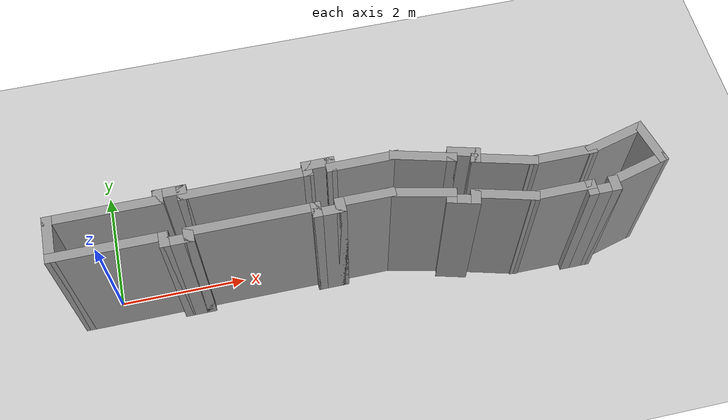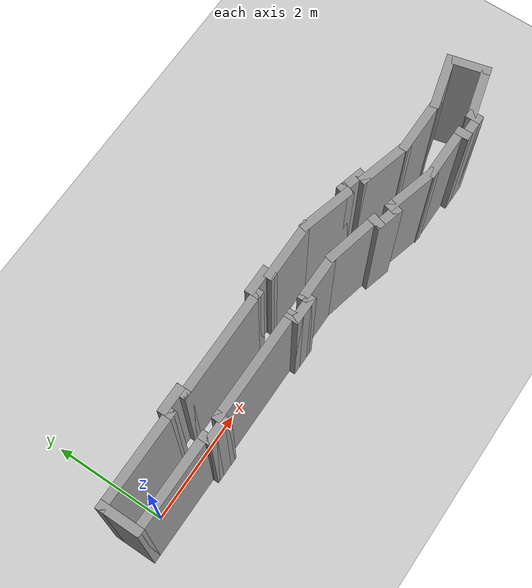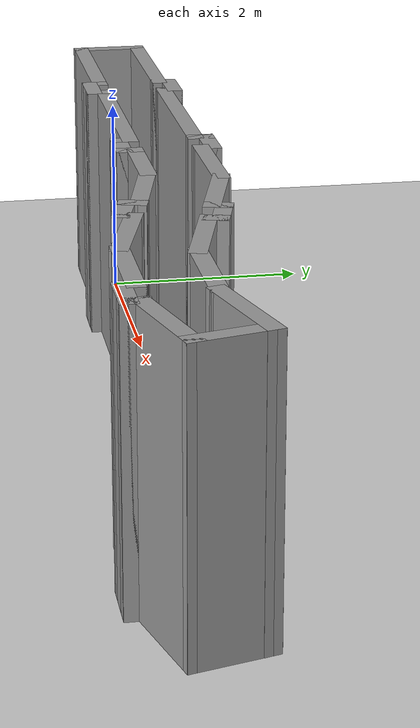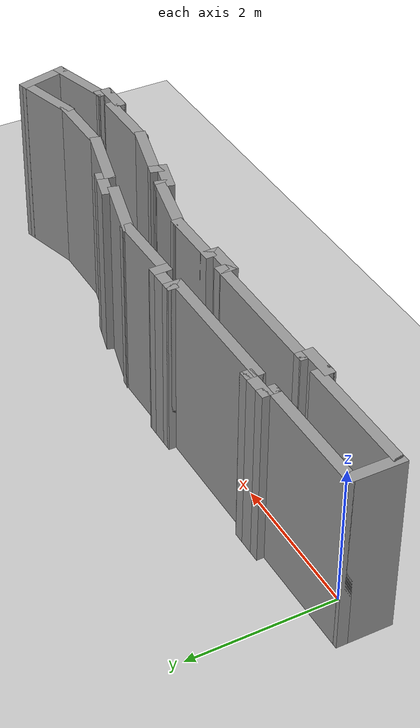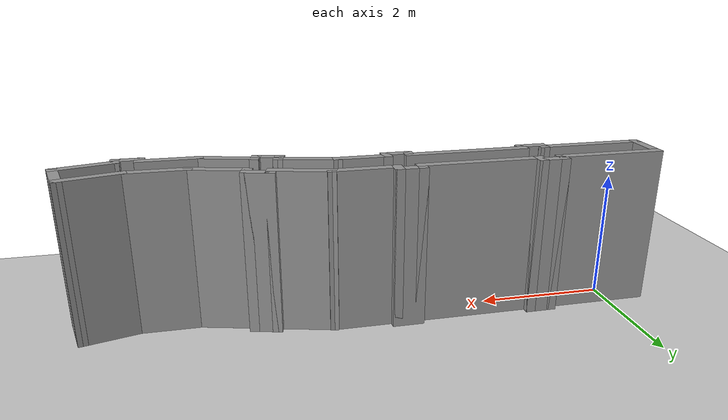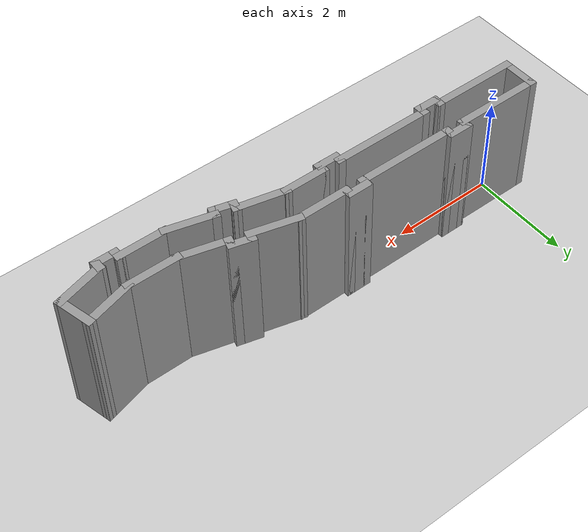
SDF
<sdf version="1.6">
 <world name="default">
  <light name="sun" type="directional">
   <pose>0 0 10 0 -0 0</pose>
   <diffuse>0.8 0.8 0.8 1</diffuse>
   <specular>0.2 0.2 0.2 1</specular>
   <attenuation>
    <range>1000</range>
    <constant>0.9</constant>
    <linear>0.01</linear>
    <quadratic>0.001</quadratic>
   </attenuation>
   <direction>-0.5 0.1 -0.9</direction>
  </light>
  <model name="ground_plane">
   <static>1</static>
   <link name="link">
    <collision name="collision">
     <geometry><plane><normal>0 0 1</normal><size>100 100</size></plane></geometry>
     <surface>
      <contact><collide_bitmask>65535</collide_bitmask></contact>
      <friction><ode><mu>100</mu><mu2>50</mu2></ode></friction>
     </surface>
    </collision>
    <visual name="visual">
     <cast_shadows>0</cast_shadows>
     <geometry><plane><normal>0 0 1</normal><size>100 100</size></plane></geometry>
     <material>
      <script><uri>file://media/materials/scripts/gazebo.material</uri><name>Gazebo/Grey</name></script>
     </material>
    </visual>
   </link>
  </model>
  <gravity>0 0 -9.8</gravity>
  <magnetic_field>6e-06 2.3e-05 -4.2e-05</magnetic_field>
  <atmosphere type="adiabatic"/>
  <physics name="default_physics" default="0" type="ode">
   <max_step_size>0.001</max_step_size>
   <real_time_factor>1</real_time_factor>
   <real_time_update_rate>1000</real_time_update_rate>
  </physics>
  <scene><ambient>0.4 0.4 0.4 1</ambient><background>0.7 0.7 0.7 1</background><shadows>1</shadows></scene>
  <audio><device>default</device></audio>
  <spherical_coordinates>
   <surface_model>EARTH_WGS84</surface_model>
   <latitude_deg>0</latitude_deg>
   <longitude_deg>0</longitude_deg>
   <elevation>0</elevation>
   <heading_deg>0</heading_deg>
  </spherical_coordinates>
  <model name="narrow_space">
   <pose>3.93613 -0.215823 0 0 -0 0</pose>
   <link name="Wall_0">
    <collision name="Wall_0_Collision">
     <geometry><box><size>1.75 0.15 2.5</size></box></geometry>
     <pose>0 0 1.25 0 -0 0</pose>
    </collision>
    <visual name="Wall_0_Visual">
     <pose>0 0 1.25 0 -0 0</pose>
     <geometry><box><size>1.75 0.15 2.5</size></box></geometry>
     <material>
      <script><uri>file://media/materials/scripts/gazebo.material</uri><name>Gazebo/Grey</name></script>
      <ambient>1 1 1 1</ambient>
     </material>
     <meta><layer>0</layer></meta>
    </visual>
    <pose>-3.68396 0.553646 0 0 -0 0</pose>
   </link>
   <link name="Wall_1">
    <collision name="Wall_1_Collision">
     <geometry><box><size>0.25 0.15 2.5</size></box></geometry>
     <pose>0 0 1.25 0 -0 0</pose>
    </collision>
    <visual name="Wall_1_Visual">
     <pose>0 0 1.25 0 -0 0</pose>
     <geometry><box><size>0.25 0.15 2.5</size></box></geometry>
     <material>
      <script><uri>file://media/materials/scripts/gazebo.material</uri><name>Gazebo/Grey</name></script>
      <ambient>1 1 1 1</ambient>
     </material>
     <meta><layer>0</layer></meta>
    </visual>
    <pose>-2.88396 0.603646 0 0 -0 1.5708</pose>
   </link>
   <link name="Wall_10">
    <collision name="Wall_10_Collision">
     <geometry><box><size>1.10518 0.15 2.5</size></box></geometry>
     <pose>0 0 1.25 0 -0 0</pose>
    </collision>
    <visual name="Wall_10_Visual">
     <pose>0 0 1.25 0 -0 0</pose>
     <geometry><box><size>1.10518 0.15 2.5</size></box></geometry>
     <material>
      <script><uri>file://media/materials/scripts/gazebo.material</uri><name>Gazebo/Grey</name></script>
      <ambient>1 1 1 1</ambient>
     </material>
     <meta><layer>0</layer></meta>
    </visual>
    <pose>0.143625 0.555067 0 0 -0 0.002976</pose>
   </link>
   <link name="Wall_16">
    <collision name="Wall_16_Collision">
     <geometry><box><size>0.75 0.15 2.5</size></box></geometry>
     <pose>0 0 1.25 0 -0 0</pose>
    </collision>
    <visual name="Wall_16_Visual">
     <pose>0 0 1.25 0 -0 0</pose>
     <geometry><box><size>0.75 0.15 2.5</size></box></geometry>
     <material>
      <script><uri>file://media/materials/scripts/gazebo.material</uri><name>Gazebo/Grey</name></script>
      <ambient>1 1 1 1</ambient>
     </material>
     <meta><layer>0</layer></meta>
    </visual>
    <pose>-4.48396 0.253646 0 0 -0 -1.5708</pose>
   </link>
   <link name="Wall_17">
    <collision name="Wall_17_Collision">
     <geometry><box><size>1.75 0.15 2.5</size></box></geometry>
     <pose>0 0 1.25 0 -0 0</pose>
    </collision>
    <visual name="Wall_17_Visual">
     <pose>0 0 1.25 0 -0 0</pose>
     <geometry><box><size>1.75 0.15 2.5</size></box></geometry>
     <material>
      <script><uri>file://media/materials/scripts/gazebo.material</uri><name>Gazebo/Grey</name></script>
      <ambient>1 1 1 1</ambient>
     </material>
     <meta><layer>0</layer></meta>
    </visual>
    <pose>-3.68396 -0.046354 0 0 -0 0</pose>
   </link>
   <link name="Wall_18">
    <collision name="Wall_18_Collision">
     <geometry><box><size>0.25 0.15 2.5</size></box></geometry>
     <pose>0 0 1.25 0 -0 0</pose>
    </collision>
    <visual name="Wall_18_Visual">
     <pose>0 0 1.25 0 -0 0</pose>
     <geometry><box><size>0.25 0.15 2.5</size></box></geometry>
     <material>
      <script><uri>file://media/materials/scripts/gazebo.material</uri><name>Gazebo/Grey</name></script>
      <ambient>1 1 1 1</ambient>
     </material>
     <meta><layer>0</layer></meta>
    </visual>
    <pose>-2.88396 -0.096354 0 0 -0 -1.5708</pose>
   </link>
   <link name="Wall_19">
    <collision name="Wall_19_Collision">
     <geometry><box><size>0.5 0.15 2.5</size></box></geometry>
     <pose>0 0 1.25 0 -0 0</pose>
    </collision>
    <visual name="Wall_19_Visual">
     <pose>0 0 1.25 0 -0 0</pose>
     <geometry><box><size>0.5 0.15 2.5</size></box></geometry>
     <material>
      <script><uri>file://media/materials/scripts/gazebo.material</uri><name>Gazebo/Grey</name></script>
      <ambient>1 1 1 1</ambient>
     </material>
     <meta><layer>0</layer></meta>
    </visual>
    <pose>-2.70896 -0.146354 0 0 -0 0</pose>
   </link>
   <link name="Wall_2">
    <collision name="Wall_2_Collision">
     <geometry><box><size>0.5 0.15 2.5</size></box></geometry>
     <pose>0 0 1.25 0 -0 0</pose>
    </collision>
    <visual name="Wall_2_Visual">
     <pose>0 0 1.25 0 -0 0</pose>
     <geometry><box><size>0.5 0.15 2.5</size></box></geometry>
     <material>
      <script><uri>file://media/materials/scripts/gazebo.material</uri><name>Gazebo/Grey</name></script>
      <ambient>1 1 1 1</ambient>
     </material>
     <meta><layer>0</layer></meta>
    </visual>
    <pose>-2.70896 0.653646 0 0 -0 0</pose>
   </link>
   <link name="Wall_20">
    <collision name="Wall_20_Collision">
     <geometry><box><size>0.25 0.15 2.5</size></box></geometry>
     <pose>0 0 1.25 0 -0 0</pose>
    </collision>
    <visual name="Wall_20_Visual">
     <pose>0 0 1.25 0 -0 0</pose>
     <geometry><box><size>0.25 0.15 2.5</size></box></geometry>
     <material>
      <script><uri>file://media/materials/scripts/gazebo.material</uri><name>Gazebo/Grey</name></script>
      <ambient>1 1 1 1</ambient>
     </material>
     <meta><layer>0</layer></meta>
    </visual>
    <pose>-2.53396 -0.096354 0 0 -0 1.5708</pose>
   </link>
   <link name="Wall_21">
    <collision name="Wall_21_Collision">
     <geometry><box><size>2 0.15 2.5</size></box></geometry>
     <pose>0 0 1.25 0 -0 0</pose>
    </collision>
    <visual name="Wall_21_Visual">
     <pose>0 0 1.25 0 -0 0</pose>
     <geometry><box><size>2 0.15 2.5</size></box></geometry>
     <material>
      <script><uri>file://media/materials/scripts/gazebo.material</uri><name>Gazebo/Grey</name></script>
      <ambient>1 1 1 1</ambient>
     </material>
     <meta><layer>0</layer></meta>
    </visual>
    <pose>-1.60896 -0.046354 0 0 -0 0</pose>
   </link>
   <link name="Wall_22">
    <collision name="Wall_22_Collision">
     <geometry><box><size>0.25 0.15 2.5</size></box></geometry>
     <pose>0 0 1.25 0 -0 0</pose>
    </collision>
    <visual name="Wall_22_Visual">
     <pose>0 0 1.25 0 -0 0</pose>
     <geometry><box><size>0.25 0.15 2.5</size></box></geometry>
     <material>
      <script><uri>file://media/materials/scripts/gazebo.material</uri><name>Gazebo/Grey</name></script>
      <ambient>1 1 1 1</ambient>
     </material>
     <meta><layer>0</layer></meta>
    </visual>
    <pose>-0.683964 -0.096354 0 0 -0 -1.5708</pose>
   </link>
   <link name="Wall_23">
    <collision name="Wall_23_Collision">
     <geometry><box><size>0.5 0.15 2.5</size></box></geometry>
     <pose>0 0 1.25 0 -0 0</pose>
    </collision>
    <visual name="Wall_23_Visual">
     <pose>0 0 1.25 0 -0 0</pose>
     <geometry><box><size>0.5 0.15 2.5</size></box></geometry>
     <material>
      <script><uri>file://media/materials/scripts/gazebo.material</uri><name>Gazebo/Grey</name></script>
      <ambient>1 1 1 1</ambient>
     </material>
     <meta><layer>0</layer></meta>
    </visual>
    <pose>-0.508964 -0.146354 0 0 -0 0</pose>
   </link>
   <link name="Wall_32">
    <collision name="Wall_32_Collision">
     <geometry><box><size>0.25 0.15 2.5</size></box></geometry>
     <pose>0 0 1.25 0 -0 0</pose>
    </collision>
    <visual name="Wall_32_Visual">
     <pose>0 0 1.25 0 -0 0</pose>
     <geometry><box><size>0.25 0.15 2.5</size></box></geometry>
     <material>
      <script><uri>file://media/materials/scripts/gazebo.material</uri><name>Gazebo/Grey</name></script>
      <ambient>1 1 1 1</ambient>
     </material>
     <meta><layer>0</layer></meta>
    </visual>
    <pose>-0.333964 -0.096354 0 0 -0 1.5708</pose>
   </link>
   <link name="Wall_33">
    <collision name="Wall_33_Collision">
     <geometry><box><size>0.909999 0.15 2.5</size></box></geometry>
     <pose>0 0 1.25 0 -0 0</pose>
    </collision>
    <visual name="Wall_33_Visual">
     <pose>0 0 1.25 0 -0 0</pose>
     <geometry><box><size>0.909999 0.15 2.5</size></box></geometry>
     <material>
      <script><uri>file://media/materials/scripts/gazebo.material</uri><name>Gazebo/Grey</name></script>
      <ambient>1 1 1 1</ambient>
     </material>
     <meta><layer>0</layer></meta>
    </visual>
    <pose>0.045642 -0.046354 0 0 -0 0</pose>
   </link>
   <link name="Wall_4">
    <collision name="Wall_4_Collision">
     <geometry><box><size>0.25 0.15 2.5</size></box></geometry>
     <pose>0 0 1.25 0 -0 0</pose>
    </collision>
    <visual name="Wall_4_Visual">
     <pose>0 0 1.25 0 -0 0</pose>
     <geometry><box><size>0.25 0.15 2.5</size></box></geometry>
     <material>
      <script><uri>file://media/materials/scripts/gazebo.material</uri><name>Gazebo/Grey</name></script>
      <ambient>1 1 1 1</ambient>
     </material>
     <meta><layer>0</layer></meta>
    </visual>
    <pose>-2.53396 0.603646 0 0 -0 -1.5708</pose>
   </link>
   <link name="Wall_45">
    <collision name="Wall_45_Collision">
     <geometry><box><size>1 0.15 2.5</size></box></geometry>
     <pose>0 0 1.25 0 -0 0</pose>
    </collision>
    <visual name="Wall_45_Visual">
     <pose>0 0 1.25 0 -0 0</pose>
     <geometry><box><size>1 0.15 2.5</size></box></geometry>
     <material>
      <script><uri>file://media/materials/scripts/gazebo.material</uri><name>Gazebo/Grey</name></script>
      <ambient>1 1 1 1</ambient>
     </material>
     <meta><layer>0</layer></meta>
    </visual>
    <pose>1.03173 0.446491 0 0 -0 -0.261799</pose>
   </link>
   <link name="Wall_47">
    <collision name="Wall_47_Collision">
     <geometry><box><size>1.03388 0.15 2.5</size></box></geometry>
     <pose>0 0 1.25 0 -0 0</pose>
    </collision>
    <visual name="Wall_47_Visual">
     <pose>0 0 1.25 0 -0 0</pose>
     <geometry><box><size>1.03388 0.15 2.5</size></box></geometry>
     <material>
      <script><uri>file://media/materials/scripts/gazebo.material</uri><name>Gazebo/Grey</name></script>
      <ambient>1 1 1 1</ambient>
     </material>
     <meta><layer>0</layer></meta>
    </visual>
    <pose>0.856103 -0.144709 0 0 -0 2.91716</pose>
   </link>
   <link name="Wall_49">
    <collision name="Wall_49_Collision">
     <geometry><box><size>0.25 0.15 2.5</size></box></geometry>
     <pose>0 0 1.25 0 -0 0</pose>
    </collision>
    <visual name="Wall_49_Visual">
     <pose>0 0 1.25 0 -0 0</pose>
     <geometry><box><size>0.25 0.15 2.5</size></box></geometry>
     <material>
      <script><uri>file://media/materials/scripts/gazebo.material</uri><name>Gazebo/Grey</name></script>
      <ambient>1 1 1 1</ambient>
     </material>
     <meta><layer>0</layer></meta>
    </visual>
    <pose>1.27402 -0.291359 0 0 -0 -1.8326</pose>
   </link>
   <link name="Wall_5">
    <collision name="Wall_5_Collision">
     <geometry><box><size>2 0.15 2.5</size></box></geometry>
     <pose>0 0 1.25 0 -0 0</pose>
    </collision>
    <visual name="Wall_5_Visual">
     <pose>0 0 1.25 0 -0 0</pose>
     <geometry><box><size>2 0.15 2.5</size></box></geometry>
     <material>
      <script><uri>file://media/materials/scripts/gazebo.material</uri><name>Gazebo/Grey</name></script>
      <ambient>1 1 1 1</ambient>
     </material>
     <meta><layer>0</layer></meta>
    </visual>
    <pose>-1.60896 0.553646 0 0 -0 0</pose>
   </link>
   <link name="Wall_50">
    <collision name="Wall_50_Collision">
     <geometry><box><size>0.5 0.15 2.5</size></box></geometry>
     <pose>0 0 1.25 0 -0 0</pose>
    </collision>
    <visual name="Wall_50_Visual">
     <pose>0 0 1.25 0 -0 0</pose>
     <geometry><box><size>0.5 0.15 2.5</size></box></geometry>
     <material>
      <script><uri>file://media/materials/scripts/gazebo.material</uri><name>Gazebo/Grey</name></script>
      <ambient>1 1 1 1</ambient>
     </material>
     <meta><layer>0</layer></meta>
    </visual>
    <pose>1.43011 -0.384949 0 0 -0 -0.261799</pose>
   </link>
   <link name="Wall_54">
    <collision name="Wall_54_Collision">
     <geometry><box><size>0.25 0.15 2.5</size></box></geometry>
     <pose>0 0 1.25 0 -0 0</pose>
    </collision>
    <visual name="Wall_54_Visual">
     <pose>0 0 1.25 0 -0 0</pose>
     <geometry><box><size>0.25 0.15 2.5</size></box></geometry>
     <material>
      <script><uri>file://media/materials/scripts/gazebo.material</uri><name>Gazebo/Grey</name></script>
      <ambient>1 1 1 1</ambient>
     </material>
     <meta><layer>0</layer></meta>
    </visual>
    <pose>1.61209 -0.381946 0 0 -0 1.309</pose>
   </link>
   <link name="Wall_55">
    <collision name="Wall_55_Collision">
     <geometry><box><size>1 0.15 2.5</size></box></geometry>
     <pose>0 0 1.25 0 -0 0</pose>
    </collision>
    <visual name="Wall_55_Visual">
     <pose>0 0 1.25 0 -0 0</pose>
     <geometry><box><size>1 0.15 2.5</size></box></geometry>
     <material>
      <script><uri>file://media/materials/scripts/gazebo.material</uri><name>Gazebo/Grey</name></script>
      <ambient>1 1 1 1</ambient>
     </material>
     <meta><layer>0</layer></meta>
    </visual>
    <pose>2.03555 -0.443648 0 0 -0 -0.261799</pose>
   </link>
   <link name="Wall_57">
    <collision name="Wall_57_Collision">
     <geometry><box><size>1 0.15 2.5</size></box></geometry>
     <pose>0 0 1.25 0 -0 0</pose>
    </collision>
    <visual name="Wall_57_Visual">
     <pose>0 0 1.25 0 -0 0</pose>
     <geometry><box><size>1 0.15 2.5</size></box></geometry>
     <material>
      <script><uri>file://media/materials/scripts/gazebo.material</uri><name>Gazebo/Grey</name></script>
      <ambient>1 1 1 1</ambient>
     </material>
     <meta><layer>0</layer></meta>
    </visual>
    <pose>2.19084 0.135908 0 0 -0 2.87979</pose>
   </link>
   <link name="Wall_58">
    <collision name="Wall_58_Collision">
     <geometry><box><size>0.25 0.15 2.5</size></box></geometry>
     <pose>0 0 1.25 0 -0 0</pose>
    </collision>
    <visual name="Wall_58_Visual">
     <pose>0 0 1.25 0 -0 0</pose>
     <geometry><box><size>0.25 0.15 2.5</size></box></geometry>
     <material>
      <script><uri>file://media/materials/scripts/gazebo.material</uri><name>Gazebo/Grey</name></script>
      <ambient>1 1 1 1</ambient>
     </material>
     <meta><layer>0</layer></meta>
    </visual>
    <pose>1.79327 0.294202 0 0 -0 1.309</pose>
   </link>
   <link name="Wall_6">
    <collision name="Wall_6_Collision">
     <geometry><box><size>0.25 0.15 2.5</size></box></geometry>
     <pose>0 0 1.25 0 -0 0</pose>
    </collision>
    <visual name="Wall_6_Visual">
     <pose>0 0 1.25 0 -0 0</pose>
     <geometry><box><size>0.25 0.15 2.5</size></box></geometry>
     <material>
      <script><uri>file://media/materials/scripts/gazebo.material</uri><name>Gazebo/Grey</name></script>
      <ambient>1 1 1 1</ambient>
     </material>
     <meta><layer>0</layer></meta>
    </visual>
    <pose>-0.683964 0.603646 0 0 -0 1.5708</pose>
   </link>
   <link name="Wall_61">
    <collision name="Wall_61_Collision">
     <geometry><box><size>0.25 0.15 2.5</size></box></geometry>
     <pose>0 0 1.25 0 -0 0</pose>
    </collision>
    <visual name="Wall_61_Visual">
     <pose>0 0 1.25 0 -0 0</pose>
     <geometry><box><size>0.25 0.15 2.5</size></box></geometry>
     <material>
      <script><uri>file://media/materials/scripts/gazebo.material</uri><name>Gazebo/Grey</name></script>
      <ambient>1 1 1 1</ambient>
     </material>
     <meta><layer>0</layer></meta>
    </visual>
    <pose>1.45519 0.384789 0 0 -0 1.309</pose>
   </link>
   <link name="Wall_62">
    <collision name="Wall_62_Collision">
     <geometry><box><size>0.5 0.15 2.5</size></box></geometry>
     <pose>0 0 1.25 0 -0 0</pose>
    </collision>
    <visual name="Wall_62_Visual">
     <pose>0 0 1.25 0 -0 0</pose>
     <geometry><box><size>0.5 0.15 2.5</size></box></geometry>
     <material>
      <script><uri>file://media/materials/scripts/gazebo.material</uri><name>Gazebo/Grey</name></script>
      <ambient>1 1 1 1</ambient>
     </material>
     <meta><layer>0</layer></meta>
    </visual>
    <pose>1.63717 0.387792 0 0 -0 -0.261799</pose>
   </link>
   <link name="Wall_64">
    <collision name="Wall_64_Collision">
     <geometry><box><size>1.05 0.15 2.5</size></box></geometry>
     <pose>0 0 1.25 0 -0 0</pose>
    </collision>
    <visual name="Wall_64_Visual">
     <pose>0 0 1.25 0 -0 0</pose>
     <geometry><box><size>1.05 0.15 2.5</size></box></geometry>
     <material>
      <script><uri>file://media/materials/scripts/gazebo.material</uri><name>Gazebo/Grey</name></script>
      <ambient>1 1 1 1</ambient>
     </material>
     <meta><layer>0</layer></meta>
    </visual>
    <pose>3.05136 0.025909 0 0 -0 0</pose>
   </link>
   <link name="Wall_7">
    <collision name="Wall_7_Collision">
     <geometry><box><size>0.5 0.15 2.5</size></box></geometry>
     <pose>0 0 1.25 0 -0 0</pose>
    </collision>
    <visual name="Wall_7_Visual">
     <pose>0 0 1.25 0 -0 0</pose>
     <geometry><box><size>0.5 0.15 2.5</size></box></geometry>
     <material>
      <script><uri>file://media/materials/scripts/gazebo.material</uri><name>Gazebo/Grey</name></script>
      <ambient>1 1 1 1</ambient>
     </material>
     <meta><layer>0</layer></meta>
    </visual>
    <pose>-0.508964 0.653646 0 0 -0 0</pose>
   </link>
   <link name="Wall_71">
    <collision name="Wall_71_Collision">
     <geometry><box><size>1 0.15 2.5</size></box></geometry>
     <pose>0 0 1.25 0 -0 0</pose>
    </collision>
    <visual name="Wall_71_Visual">
     <pose>0 0 1.25 0 -0 0</pose>
     <geometry><box><size>1 0.15 2.5</size></box></geometry>
     <material>
      <script><uri>file://media/materials/scripts/gazebo.material</uri><name>Gazebo/Grey</name></script>
      <ambient>1 1 1 1</ambient>
     </material>
     <meta><layer>0</layer></meta>
    </visual>
    <pose>2.87107 -0.553646 0 0 -0 0</pose>
   </link>
   <link name="Wall_72">
    <collision name="Wall_72_Collision">
     <geometry><box><size>0.25 0.15 2.5</size></box></geometry>
     <pose>0 0 1.25 0 -0 0</pose>
    </collision>
    <visual name="Wall_72_Visual">
     <pose>0 0 1.25 0 -0 0</pose>
     <geometry><box><size>0.25 0.15 2.5</size></box></geometry>
     <material>
      <script><uri>file://media/materials/scripts/gazebo.material</uri><name>Gazebo/Grey</name></script>
      <ambient>1 1 1 1</ambient>
     </material>
     <meta><layer>0</layer></meta>
    </visual>
    <pose>3.29607 -0.603646 0 0 -0 -1.5708</pose>
   </link>
   <link name="Wall_73">
    <collision name="Wall_73_Collision">
     <geometry><box><size>0.5 0.15 2.5</size></box></geometry>
     <pose>0 0 1.25 0 -0 0</pose>
    </collision>
    <visual name="Wall_73_Visual">
     <pose>0 0 1.25 0 -0 0</pose>
     <geometry><box><size>0.5 0.15 2.5</size></box></geometry>
     <material>
      <script><uri>file://media/materials/scripts/gazebo.material</uri><name>Gazebo/Grey</name></script>
      <ambient>1 1 1 1</ambient>
     </material>
     <meta><layer>0</layer></meta>
    </visual>
    <pose>3.47107 -0.653646 0 0 -0 0</pose>
   </link>
   <link name="Wall_74">
    <collision name="Wall_74_Collision">
     <geometry><box><size>0.25 0.15 2.5</size></box></geometry>
     <pose>0 0 1.25 0 -0 0</pose>
    </collision>
    <visual name="Wall_74_Visual">
     <pose>0 0 1.25 0 -0 0</pose>
     <geometry><box><size>0.25 0.15 2.5</size></box></geometry>
     <material>
      <script><uri>file://media/materials/scripts/gazebo.material</uri><name>Gazebo/Grey</name></script>
      <ambient>1 1 1 1</ambient>
     </material>
     <meta><layer>0</layer></meta>
    </visual>
    <pose>3.64607 -0.603646 0 0 -0 1.5708</pose>
   </link>
   <link name="Wall_75">
    <collision name="Wall_75_Collision">
     <geometry><box><size>1 0.15 2.5</size></box></geometry>
     <pose>0 0 1.25 0 -0 0</pose>
    </collision>
    <visual name="Wall_75_Visual">
     <pose>0 0 1.25 0 -0 0</pose>
     <geometry><box><size>1 0.15 2.5</size></box></geometry>
     <material>
      <script><uri>file://media/materials/scripts/gazebo.material</uri><name>Gazebo/Grey</name></script>
      <ambient>1 1 1 1</ambient>
     </material>
     <meta><layer>0</layer></meta>
    </visual>
    <pose>4.05659 -0.443648 0 0 -0 0.261799</pose>
   </link>
   <link name="Wall_79">
    <collision name="Wall_79_Collision">
     <geometry><box><size>1 0.15 2.5</size></box></geometry>
     <pose>0 0 1.25 0 -0 0</pose>
    </collision>
    <visual name="Wall_79_Visual">
     <pose>0 0 1.25 0 -0 0</pose>
     <geometry><box><size>1 0.15 2.5</size></box></geometry>
     <material>
      <script><uri>file://media/materials/scripts/gazebo.material</uri><name>Gazebo/Grey</name></script>
      <ambient>1 1 1 1</ambient>
     </material>
     <meta><layer>0</layer></meta>
    </visual>
    <pose>3.91188 0.135908 0 0 -0 0.261799</pose>
   </link>
   <link name="Wall_80">
    <collision name="Wall_80_Collision">
     <geometry><box><size>0.747348 0.15 2.5</size></box></geometry>
     <pose>0 0 1.25 0 -0 0</pose>
    </collision>
    <visual name="Wall_80_Visual">
     <pose>0 0 1.25 0 -0 0</pose>
     <geometry><box><size>0.747348 0.15 2.5</size></box></geometry>
     <material>
      <script><uri>file://media/materials/scripts/gazebo.material</uri><name>Gazebo/Grey</name></script>
      <ambient>1 1 1 1</ambient>
     </material>
     <meta><layer>0</layer></meta>
    </visual>
    <pose>4.39475 -0.043872 0 0 -0 -1.32611</pose>
   </link>
   <link name="Wall_9">
    <collision name="Wall_9_Collision">
     <geometry><box><size>0.25 0.15 2.5</size></box></geometry>
     <pose>0 0 1.25 0 -0 0</pose>
    </collision>
    <visual name="Wall_9_Visual">
     <pose>0 0 1.25 0 -0 0</pose>
     <geometry><box><size>0.25 0.15 2.5</size></box></geometry>
     <material>
      <script><uri>file://media/materials/scripts/gazebo.material</uri><name>Gazebo/Grey</name></script>
      <ambient>1 1 1 1</ambient>
     </material>
     <meta><layer>0</layer></meta>
    </visual>
    <pose>-0.333964 0.603646 0 0 -0 -1.5708</pose>
   </link>
   <static>1</static>
  </model>
 </world>
</sdf>
